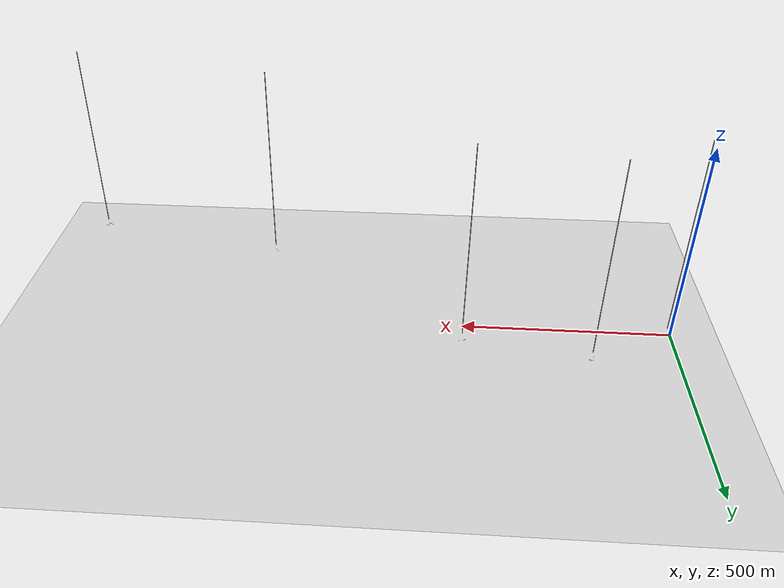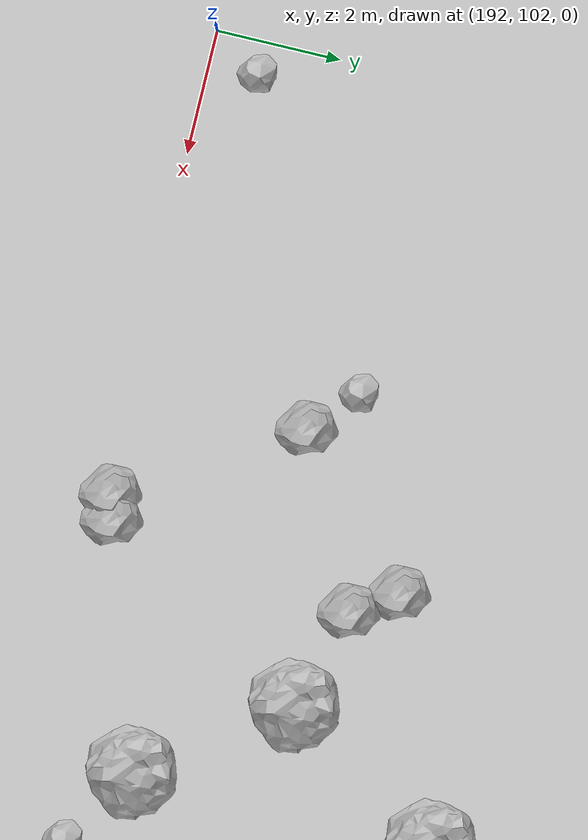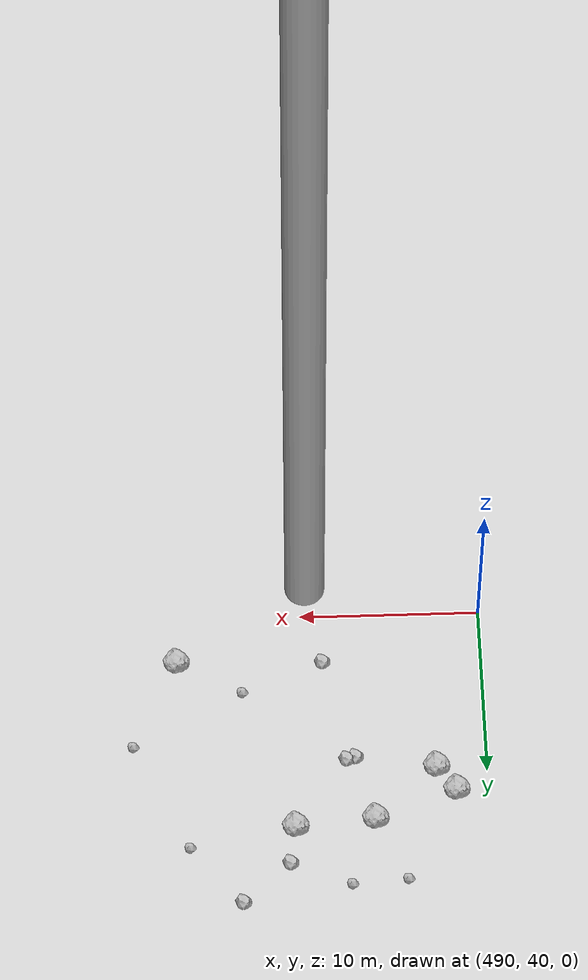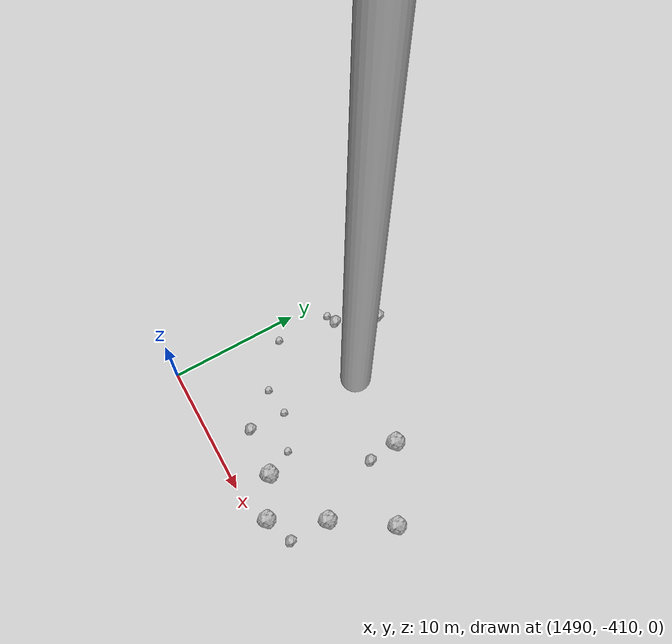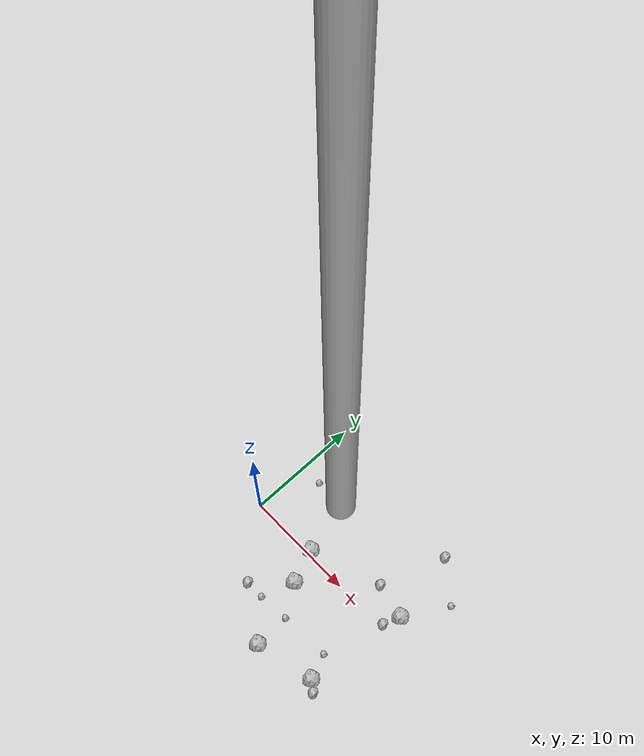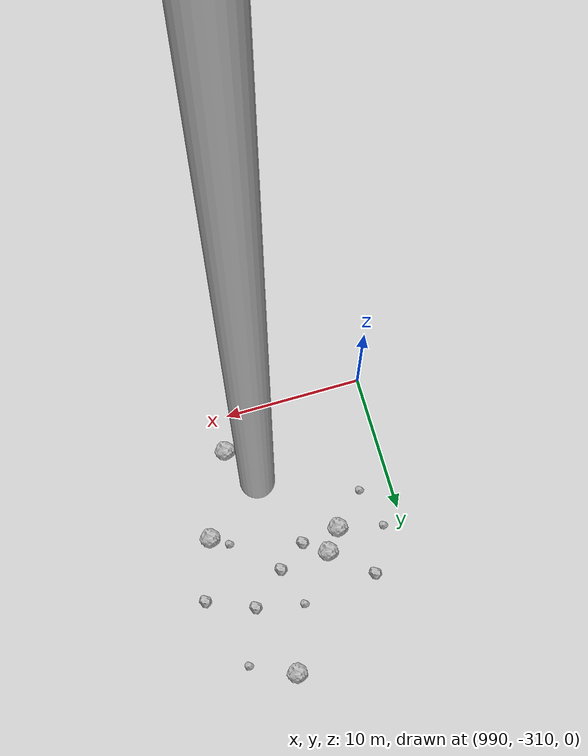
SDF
<?xml version="1.0" ?>
<sdf version="1.6">
  <world name="default">

    <include>
      <uri>model://custom_ground</uri>
    </include>

    <include>
      <uri>model://sun</uri>
    </include>

    <spherical_coordinates>
      <surface_model>EARTH_WGS84</surface_model>
      <latitude_deg>38.161479</latitude_deg>
      <longitude_deg>-122.454630</longitude_deg>
      <elevation>488.0</elevation>
      <heading_deg>90</heading_deg>
    </spherical_coordinates>

    <model name="rock1_0_0">
      <include>
        <uri>model://rock1</uri>
        <pose>7.171217465679678 -2.5752269565740864 0.5 0 0 0</pose>
      </include>
    </model>
    <model name="rock1_0_1">
      <include>
        <uri>model://rock1</uri>
        <pose>14.14416098176953 -7.11774945009918 0.5 0 0 0</pose>
      </include>
    </model>
    <model name="rock1_0_2">
      <include>
        <uri>model://rock1</uri>
        <pose>15.417557911645236 1.7737606434504833 0.5 0 0 0</pose>
      </include>
    </model>
    <model name="rock1_0_3">
      <include>
        <uri>model://rock1</uri>
        <pose>9.016411609558624 -8.342597388402668 0.5 0 0 0</pose>
      </include>
    </model>
    <model name="rock1_0_4">
      <include>
        <uri>model://rock1</uri>
        <pose>6.0957196079931215 0.33744513340193194 0.5 0 0 0</pose>
      </include>
    </model>
    <model name="rock2_0_0">
      <include>
        <uri>model://rock2</uri>
        <pose>14.811132362708836 0.3272587201176069 0.3 0 0 0</pose>
      </include>
    </model>
    <model name="rock2_0_1">
      <include>
        <uri>model://rock2</uri>
        <pose>14.28821720904272 8.178287500038198 0.3 0 0 0</pose>
      </include>
    </model>
    <model name="rock2_0_2">
      <include>
        <uri>model://rock2</uri>
        <pose>4.444764947628004 -5.395689110794484 0.3 0 0 0</pose>
      </include>
    </model>
    <model name="rock2_0_3">
      <include>
        <uri>model://rock2</uri>
        <pose>15.008926579125896 -7.751155847978996 0.3 0 0 0</pose>
      </include>
    </model>
    <model name="rock2_0_4">
      <include>
        <uri>model://rock2</uri>
        <pose>12.252510967464168 2.5279638035640417 0.3 0 0 0</pose>
      </include>
    </model>
    <model name="rock3_0_0">
      <include>
        <uri>model://rock3</uri>
        <pose>17.59815149509221 5.522342486203087 0.2 0 0 0</pose>
      </include>
    </model>
    <model name="rock3_0_1">
      <include>
        <uri>model://rock3</uri>
        <pose>13.26873900393088 -4.968138831723916 0.2 0 0 0</pose>
      </include>
    </model>
    <model name="rock3_0_2">
      <include>
        <uri>model://rock3</uri>
        <pose>8.862343979951948 -5.200316170359354 0.2 0 0 0</pose>
      </include>
    </model>
    <model name="rock3_0_3">
      <include>
        <uri>model://rock3</uri>
        <pose>6.125931580309317 -5.425520259647509 0.2 0 0 0</pose>
      </include>
    </model>
    <model name="rock3_0_4">
      <include>
        <uri>model://rock3</uri>
        <pose>2.023936500963619 5.043991022922951 0.2 0 0 0</pose>
      </include>
    </model>
    <model name="rock1_1_0">
      <include>
        <uri>model://rock1</uri>
        <pose>194.83315721905936 93.13218383642806 0.5 0 0 0</pose>
      </include>
    </model>
    <model name="rock1_1_1">
      <include>
        <uri>model://rock1</uri>
        <pose>203.73469571077464 108.28944455223233 0.5 0 0 0</pose>
      </include>
    </model>
    <model name="rock1_1_2">
      <include>
        <uri>model://rock1</uri>
        <pose>203.70354451405336 103.44695836000184 0.5 0 0 0</pose>
      </include>
    </model>
    <model name="rock1_1_3">
      <include>
        <uri>model://rock1</uri>
        <pose>207.18909530472163 104.3063537732757 0.5 0 0 0</pose>
      </include>
    </model>
    <model name="rock1_1_4">
      <include>
        <uri>model://rock1</uri>
        <pose>202.0879407357687 105.68130909949244 0.5 0 0 0</pose>
      </include>
    </model>
    <model name="rock2_1_0">
      <include>
        <uri>model://rock2</uri>
        <pose>199.97069117523716 106.8876809262324 0.3 0 0 0</pose>
      </include>
    </model>
    <model name="rock2_1_1">
      <include>
        <uri>model://rock2</uri>
        <pose>200.43381035376498 106.18004643444378 0.3 0 0 0</pose>
      </include>
    </model>
    <model name="rock2_1_2">
      <include>
        <uri>model://rock2</uri>
        <pose>199.4867220014165 102.09429905289525 0.3 0 0 0</pose>
      </include>
    </model>
    <model name="rock2_1_3">
      <include>
        <uri>model://rock2</uri>
        <pose>199.8869616999504 102.21036403005252 0.3 0 0 0</pose>
      </include>
    </model>
    <model name="rock2_1_4">
      <include>
        <uri>model://rock2</uri>
        <pose>197.78898824647146 104.86025331254031 0.3 0 0 0</pose>
      </include>
    </model>
    <model name="rock3_1_0">
      <include>
        <uri>model://rock3</uri>
        <pose>199.99015990708153 94.25127835606152 0.2 0 0 0</pose>
      </include>
    </model>
    <model name="rock3_1_1">
      <include>
        <uri>model://rock3</uri>
        <pose>204.972458969548 102.62402003451152 0.2 0 0 0</pose>
      </include>
    </model>
    <model name="rock3_1_2">
      <include>
        <uri>model://rock3</uri>
        <pose>195.8719805936085 96.48756773328526 0.2 0 0 0</pose>
      </include>
    </model>
    <model name="rock3_1_3">
      <include>
        <uri>model://rock3</uri>
        <pose>192.50935603074413 102.77201412604703 0.2 0 0 0</pose>
      </include>
    </model>
    <model name="rock3_1_4">
      <include>
        <uri>model://rock3</uri>
        <pose>197.036038908448 105.51548414814198 0.2 0 0 0</pose>
      </include>
    </model>
    <model name="rock1_2_0">
      <include>
        <uri>model://rock1</uri>
        <pose>491.73590642391855 51.263092957898635 0.5 0 0 0</pose>
      </include>
    </model>
    <model name="rock1_2_1">
      <include>
        <uri>model://rock1</uri>
        <pose>500.56807840759234 53.286540209681974 0.5 0 0 0</pose>
      </include>
    </model>
    <model name="rock1_2_2">
      <include>
        <uri>model://rock1</uri>
        <pose>492.7736419953563 49.8100128645257 0.5 0 0 0</pose>
      </include>
    </model>
    <model name="rock1_2_3">
      <include>
        <uri>model://rock1</uri>
        <pose>496.2143527567531 52.91300162987738 0.5 0 0 0</pose>
      </include>
    </model>
    <model name="rock1_2_4">
      <include>
        <uri>model://rock1</uri>
        <pose>506.91819642264585 42.92927464463146 0.5 0 0 0</pose>
      </include>
    </model>
    <model name="rock2_2_0">
      <include>
        <uri>model://rock2</uri>
        <pose>497.6782966861214 49.190177412598516 0.3 0 0 0</pose>
      </include>
    </model>
    <model name="rock2_2_1">
      <include>
        <uri>model://rock2</uri>
        <pose>500.9025672173604 55.44262079441762 0.3 0 0 0</pose>
      </include>
    </model>
    <model name="rock2_2_2">
      <include>
        <uri>model://rock2</uri>
        <pose>503.4941911088199 57.739968038119514 0.3 0 0 0</pose>
      </include>
    </model>
    <model name="rock2_2_3">
      <include>
        <uri>model://rock2</uri>
        <pose>498.8327374159387 43.03843433011726 0.3 0 0 0</pose>
      </include>
    </model>
    <model name="rock2_2_4">
      <include>
        <uri>model://rock2</uri>
        <pose>497.19341980291864 49.06619057092389 0.3 0 0 0</pose>
      </include>
    </model>
    <model name="rock3_2_0">
      <include>
        <uri>model://rock3</uri>
        <pose>497.56734152779194 56.73467053620601 0.2 0 0 0</pose>
      </include>
    </model>
    <model name="rock3_2_1">
      <include>
        <uri>model://rock3</uri>
        <pose>509.32999579698844 48.07588818991811 0.2 0 0 0</pose>
      </include>
    </model>
    <model name="rock3_2_2">
      <include>
        <uri>model://rock3</uri>
        <pose>503.2798707336344 44.79608458928236 0.2 0 0 0</pose>
      </include>
    </model>
    <model name="rock3_2_3">
      <include>
        <uri>model://rock3</uri>
        <pose>494.5346696842129 56.50669831909221 0.2 0 0 0</pose>
      </include>
    </model>
    <model name="rock3_2_4">
      <include>
        <uri>model://rock3</uri>
        <pose>506.2849478091702 54.342670938283916 0.2 0 0 0</pose>
      </include>
    </model>
    <model name="rock1_3_0">
      <include>
        <uri>model://rock1</uri>
        <pose>995.7533292793094 -298.21373170330116 0.5 0 0 0</pose>
      </include>
    </model>
    <model name="rock1_3_1">
      <include>
        <uri>model://rock1</uri>
        <pose>1000.8565613794398 -307.39034603857027 0.5 0 0 0</pose>
      </include>
    </model>
    <model name="rock1_3_2">
      <include>
        <uri>model://rock1</uri>
        <pose>1003.602321966513 -301.4660000665149 0.5 0 0 0</pose>
      </include>
    </model>
    <model name="rock1_3_3">
      <include>
        <uri>model://rock1</uri>
        <pose>1000.2868424989512 -290.53488509087884 0.5 0 0 0</pose>
      </include>
    </model>
    <model name="rock1_3_4">
      <include>
        <uri>model://rock1</uri>
        <pose>994.5995430814938 -299.7036067114292 0.5 0 0 0</pose>
      </include>
    </model>
    <model name="rock2_3_0">
      <include>
        <uri>model://rock2</uri>
        <pose>992.9484916840735 -295.79335315910185 0.3 0 0 0</pose>
      </include>
    </model>
    <model name="rock2_3_1">
      <include>
        <uri>model://rock2</uri>
        <pose>997.3181244106211 -299.3558882339561 0.3 0 0 0</pose>
      </include>
    </model>
    <model name="rock2_3_2">
      <include>
        <uri>model://rock2</uri>
        <pose>999.3395044378906 -297.92367946010273 0.3 0 0 0</pose>
      </include>
    </model>
    <model name="rock2_3_3">
      <include>
        <uri>model://rock2</uri>
        <pose>1005.1126862953736 -297.19302427549815 0.3 0 0 0</pose>
      </include>
    </model>
    <model name="rock2_3_4">
      <include>
        <uri>model://rock2</uri>
        <pose>1001.8043243791769 -295.7829835744512 0.3 0 0 0</pose>
      </include>
    </model>
    <model name="rock3_3_0">
      <include>
        <uri>model://rock3</uri>
        <pose>1002.356450822451 -300.74694861992333 0.2 0 0 0</pose>
      </include>
    </model>
    <model name="rock3_3_1">
      <include>
        <uri>model://rock3</uri>
        <pose>992.2627312018627 -301.9717213896668 0.2 0 0 0</pose>
      </include>
    </model>
    <model name="rock3_3_2">
      <include>
        <uri>model://rock3</uri>
        <pose>991.3484296913103 -299.02334498994344 0.2 0 0 0</pose>
      </include>
    </model>
    <model name="rock3_3_3">
      <include>
        <uri>model://rock3</uri>
        <pose>1003.3575359634906 -291.9966676529107 0.2 0 0 0</pose>
      </include>
    </model>
    <model name="rock3_3_4">
      <include>
        <uri>model://rock3</uri>
        <pose>998.3770222063027 -295.1268202307683 0.2 0 0 0</pose>
      </include>
    </model>
    <model name="rock1_4_0">
      <include>
        <uri>model://rock1</uri>
        <pose>1503.2930091671942 -409.0536119331181 0.5 0 0 0</pose>
      </include>
    </model>
    <model name="rock1_4_1">
      <include>
        <uri>model://rock1</uri>
        <pose>1505.490081137983 -404.95764819520446 0.5 0 0 0</pose>
      </include>
    </model>
    <model name="rock1_4_2">
      <include>
        <uri>model://rock1</uri>
        <pose>1502.599924289841 -397.5407763662941 0.5 0 0 0</pose>
      </include>
    </model>
    <model name="rock1_4_3">
      <include>
        <uri>model://rock1</uri>
        <pose>1500.283650447073 -407.2765915745135 0.5 0 0 0</pose>
      </include>
    </model>
    <model name="rock1_4_4">
      <include>
        <uri>model://rock1</uri>
        <pose>1508.342802149705 -400.4905812380654 0.5 0 0 0</pose>
      </include>
    </model>
    <model name="rock2_4_0">
      <include>
        <uri>model://rock2</uri>
        <pose>1505.5416434108897 -408.17174074910105 0.3 0 0 0</pose>
      </include>
    </model>
    <model name="rock2_4_1">
      <include>
        <uri>model://rock2</uri>
        <pose>1491.9608377351717 -397.1801161952227 0.3 0 0 0</pose>
      </include>
    </model>
    <model name="rock2_4_2">
      <include>
        <uri>model://rock2</uri>
        <pose>1502.901776551053 -399.88418936915696 0.3 0 0 0</pose>
      </include>
    </model>
    <model name="rock2_4_3">
      <include>
        <uri>model://rock2</uri>
        <pose>1493.1125971419583 -393.99022530884906 0.3 0 0 0</pose>
      </include>
    </model>
    <model name="rock2_4_4">
      <include>
        <uri>model://rock2</uri>
        <pose>1496.4461207301363 -406.9336868166786 0.3 0 0 0</pose>
      </include>
    </model>
    <model name="rock3_4_0">
      <include>
        <uri>model://rock3</uri>
        <pose>1494.3840465341127 -404.32363346130444 0.2 0 0 0</pose>
      </include>
    </model>
    <model name="rock3_4_1">
      <include>
        <uri>model://rock3</uri>
        <pose>1499.3141976501986 -405.2185721968982 0.2 0 0 0</pose>
      </include>
    </model>
    <model name="rock3_4_2">
      <include>
        <uri>model://rock3</uri>
        <pose>1491.2869771385656 -397.5702772720976 0.2 0 0 0</pose>
      </include>
    </model>
    <model name="rock3_4_3">
      <include>
        <uri>model://rock3</uri>
        <pose>1496.5057718655046 -404.0643295961429 0.2 0 0 0</pose>
      </include>
    </model>
    <model name="rock3_4_4">
      <include>
        <uri>model://rock3</uri>
        <pose>1491.2737963360464 -401.7749593017871 0.2 0 0 0</pose>
      </include>
    </model>

    <model name="cylinder_1">
      <static>true</static>
      <link name="link">
        <visual name="visual">
          <geometry>
            <cylinder>
              <radius>1</radius>
              <length>500</length>
            </cylinder>
          </geometry>
        </visual>
      </link>
      <pose>10 0 270 0 0 0</pose>
    </model>

    <model name="cylinder_2">
      <static>true</static>
      <link name="link">
        <visual name="visual">
          <geometry>
            <cylinder>
              <radius>1</radius>
              <length>500</length>
            </cylinder>
          </geometry>
        </visual>
      </link>
      <pose>200 100 270 0 0 0</pose>
    </model>

    <model name="cylinder_3">
      <static>true</static>
      <link name="link">
        <visual name="visual">
          <geometry>
            <cylinder>
              <radius>1</radius>
              <length>500</length>
            </cylinder>
          </geometry>
        </visual>
      </link>
      <pose>500 50 270 0 0 0</pose>
    </model>

    <model name="cylinder_4">
      <static>true</static>
      <link name="link">
        <visual name="visual">
          <geometry>
            <cylinder>
              <radius>1</radius>
              <length>500</length>
            </cylinder>
          </geometry>
        </visual>
      </link>
      <pose>1000 -300 270 0 0 0</pose>
    </model>

    <model name="cylinder_5">
      <static>true</static>
      <link name="link">
        <visual name="visual">
          <geometry>
            <cylinder>
              <radius>1</radius>
              <length>500</length>
            </cylinder>
          </geometry>
        </visual>
      </link>
      <pose>1500 -400 270 0 0 0</pose>
    </model>

  </world>
</sdf>

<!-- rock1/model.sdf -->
<sdf version="1.6">
  <model name="rock1">
    <static>true</static> <!-- Set to true if the model should not move -->
    <pose>0 0 0 0 0 0</pose>

    <!--z offset is 0.5 for full scale-->

    <link name="link">
      <collision name="rock1_collision">
        <geometry>
          <mesh>
            <uri>model://meshes/rock1.dae</uri>
          </mesh>
        </geometry>
      </collision>
      <visual name="rock1_visual">
        <geometry>
          <mesh>
            <uri>model://meshes/rock1.dae</uri>
          </mesh>
        </geometry>
        <material>
          <script>
            <uri>model://materials/scripts/sand_pebbles.material</uri>
            <name>custom_ground/Image</name>
          </script>
        </material>
      </visual>
    </link>
  </model>
</sdf>

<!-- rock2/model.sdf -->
<sdf version="1.6">
  <model name="rock2">
    <static>true</static> <!-- Set to true if the model should not move -->
    <pose>0 0 0 0 0 0</pose>

    <!--z offset is 0.3 for full scale-->

    <link name="link">
      <collision name="rock2_collision">
        <geometry>
          <mesh>
            <uri>model://meshes/rock2.dae</uri>
          </mesh>
        </geometry>
      </collision>
      <visual name="rock2_visual">
        <geometry>
          <mesh>
            <uri>model://meshes/rock2.dae</uri>
          </mesh>
        </geometry>
        <material>
          <script>
            <uri>model://materials/scripts/sand_pebbles.material</uri>
            <name>custom_ground/Image</name>
          </script>
        </material>
      </visual>
    </link>
  </model>
</sdf>

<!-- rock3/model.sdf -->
<sdf version="1.6">
  <model name="rock3">
    <static>true</static> <!-- Set to true if the model should not move -->
    <pose>0 0 0 0 0 0</pose>

    <!--z offset is 0.2 for full scale-->

    <link name="link">
      <collision name="rock3_collision">
        <geometry>
          <mesh>
            <uri>model://meshes/rock3.dae</uri>
          </mesh>
        </geometry>
      </collision>
      <visual name="rock3_visual">
        <geometry>
          <mesh>
            <uri>model://meshes/rock3.dae</uri>
          </mesh>
        </geometry>
        <material>
          <script>
            <uri>model://materials/scripts/sand_pebbles.material</uri>
            <name>custom_ground/Image</name>
          </script>
        </material>
      </visual>
    </link>
  </model>
</sdf>

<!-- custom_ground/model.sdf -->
<sdf version="1.6">
  <model name="custom_ground">
    <static>true</static> <!-- Ground is static and immovable -->
    <link name="ground_link">
      <pose>240 0 0 0 0 0</pose> <!-- Position and orientation relative to the world -->
      <!-- Visual Representation -->
      <visual name="ground_visual">
        <geometry>
          <plane>
            <normal>0 0 1</normal> <!-- Upward facing plane -->
            <size>500 500</size> <!-- Size of the plane -->
          </plane>
        </geometry>
        <material>
          <script>
            <uri>model://materials/scripts/sand_pebbles.material</uri>
            <name>custom_ground/Image</name>
          </script>
        </material>
      </visual>

      <!-- Collision Representation -->
      <collision name="ground_collision">
        <geometry>
          <plane>
            <normal>0 0 1</normal>
            <size>100 100</size>
          </plane>
        </geometry>
      </collision>

    </link>
  </model>
</sdf>
